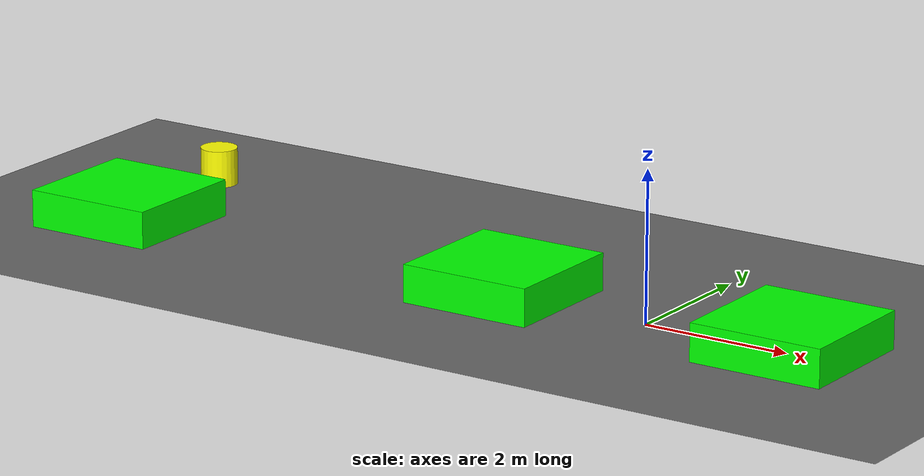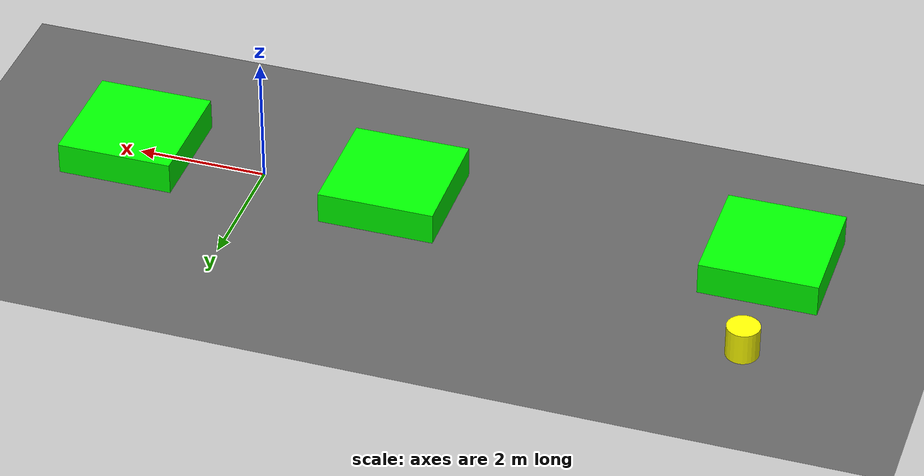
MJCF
<mujoco model="randommix_007_lvl0_standard_obs3_d1short_seed1060">
    <compiler angle="degree" coordinate="local" inertiafromgeom="true"/>
    <option integrator="RK4" timestep="0.01"/>

    <asset>
        <texture builtin="gradient" height="100" rgb1="0.6 0.8 1" rgb2="0 0 0" type="skybox" width="100"/>
        <texture name="floor_texture" type="2d" builtin="checker" width="100" height="100" rgb1="0 0 0" rgb2="0.8 0.8 0.8"/>
        <material name="MatPlane" reflectance="0.5" shininess="1" specular="1" texrepeat="10 10" texture="floor_texture"/>
    </asset>

    <!-- Excluding the contact between the agent and the goal, and the agent and the floor -->
    <contact>
        <exclude body1="agent" body2="goal"/>
        <exclude body1 = "agent" body2 = "floor"/>
    </contact>

    <extension>
        <plugin plugin = "mujoco.pid">
            <instance name = "pid1">
                <config key="kp" value="2"/>
                <config key="ki" value="0"/>
                <config key="kd" value="55"/>
            </instance>
        </plugin>
    </extension>

    <worldbody>
        <light cutoff="100" diffuse="1 1 1" dir="-0 0 -1.3" directional="true" exponent="1" pos="0 0 1.3" specular=".1 .1 .1"/>
        <body name="floor" pos="0 0 0">
            <geom name="floor_geom" type="plane" size="20 20 0.1" material="MatPlane"/>
        </body>

                <body name="goal" pos="0.0000 0.0000 0">
            <geom name="goal_geom" type="plane" size="0.5 0.5 1" pos="0 0 0" rgba="1 0 0 1"/>
        </body>

                <body name="agent" pos="-8.0000 2.0000 0.250">
            <joint name="j1" type="slide" axis ="1 0 0 "/>
            <joint name="j2" type="slide" axis ="0 1 0 "/>
            <geom name="agent_geom" type="cylinder" size="0.25 0.25 0.250" rgba="1 1 0 1"/>
        </body>

        <body name="obstacle1" pos="-7.9180 -0.0837 0.250">  <geom name="obstacle1_geom" type="box" size="0.9000 0.9000 0.250" rgba="0 1 0 1"/></body>
        <body name="obstacle2" pos="-2.0784 -0.0301 0.250">  <geom name="obstacle2_geom" type="box" size="0.9000 0.9000 0.250" rgba="0 1 0 1"/></body>
        <body name="obstacle3" pos="2.0896 -0.0252 0.250">  <geom name="obstacle3_geom" type="box" size="0.9000 0.9000 0.250" rgba="0 1 0 1"/></body>

    </worldbody>

    <sensor>
<!-- SENSORS -->

        <distance name="dist1" geom1="agent_geom" geom2="obstacle1_geom" cutoff="1.5"/>
        <distance name="dist2" geom1="agent_geom" geom2="obstacle2_geom" cutoff="1.5"/>
        <distance name="dist3" geom1="agent_geom" geom2="obstacle3_geom" cutoff="1.5"/>
</sensor>

    <actuator>
        <plugin joint="j1" plugin="mujoco.pid" instance="pid1" />
        <plugin joint="j2" plugin="mujoco.pid" instance="pid1"/>
    </actuator>
</mujoco>
